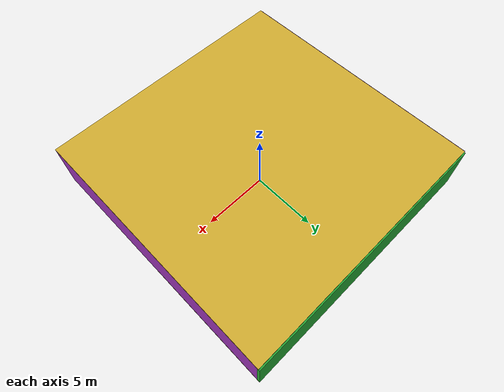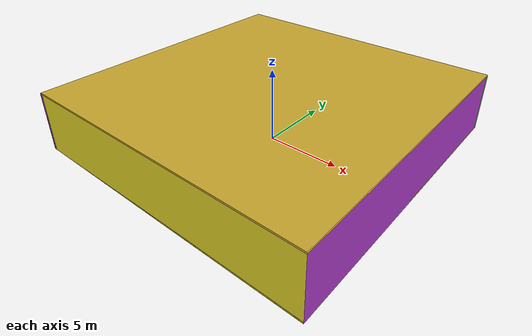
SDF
<sdf version="1.4">
 <world name="default">
  <physics type="ode">
   <max_step_size>0.001</max_step_size>
   <real_time_factor>1</real_time_factor>
   <real_time_update_rate>1000</real_time_update_rate>
   <gravity>0 0 -9.8</gravity>
  </physics>
  <scene><ambient>0.4 0.4 0.4 1</ambient><background>0.7 0.7 0.7 1</background><shadows>1</shadows></scene>
  <model name="Surrounding">
   <static>1</static>
   <link name="Ceiling">
    <collision name="Ceiling_Collision"><geometry><box><size>20 20 0.1</size></box></geometry></collision>
    <visual name="Ceiling_Visual">
     <geometry><box><size>20 20 0.1</size></box></geometry>
     <material>
      <script><uri>file://media/materials/scripts/gazebo.material</uri><name>Gazebo/Gold</name></script>
     </material>
    </visual>
    <pose>0 0 4.05 0 0 0</pose>
   </link>
   <link name="Wall_South">
    <collision name="Wall_South_Collision">
     <geometry><box><size>20 0 4</size></box></geometry>
     <pose>0 0 2 0 -0 0</pose>
    </collision>
    <visual name="Wall_South_Visual">
     <pose>0 0 2 0 -0 0</pose>
     <geometry><box><size>20 0 4</size></box></geometry>
     <material>
      <script><uri>file://media/materials/scripts/gazebo.material</uri><name>Gazebo/YellowGlow</name></script>
     </material>
    </visual>
    <velocity_decay><linear>0</linear><angular>0</angular></velocity_decay>
    <pose>0 -10 0 0 -0 0</pose>
   </link>
   <link name="Wall_East">
    <collision name="Wall_21_Collision">
     <geometry><box><size>20 0 4</size></box></geometry>
     <pose>0 0 2 0 -0 0</pose>
    </collision>
    <visual name="Wall_21_Visual">
     <pose>0 0 2 0 -0 0</pose>
     <geometry><box><size>20 0 4</size></box></geometry>
     <material>
      <script><uri>file://media/materials/scripts/gazebo.material</uri><name>Gazebo/Purple</name></script>
     </material>
    </visual>
    <velocity_decay><linear>0</linear><angular>0</angular></velocity_decay>
    <pose>10 0 0 0 -0 1.5708</pose>
   </link>
   <link name="Wall_North">
    <collision name="Wall_22_Collision">
     <geometry><box><size>20 0.2 4</size></box></geometry>
     <pose>0 0 2 0 -0 0</pose>
    </collision>
    <visual name="Wall_22_Visual">
     <pose>0 0 2 0 -0 0</pose>
     <geometry><box><size>20 0.2 4</size></box></geometry>
     <material>
      <script><uri>file://media/materials/scripts/gazebo.material</uri><name>Gazebo/Green</name></script>
     </material>
    </visual>
    <velocity_decay><linear>0</linear><angular>0</angular></velocity_decay>
    <pose>0 10 0 0 -0 0</pose>
   </link>
   <link name="Wall_West">
    <collision name="Wall_23_Collision">
     <geometry><box><size>20 0.2 4</size></box></geometry>
     <pose>0 0 2 0 -0 0</pose>
    </collision>
    <visual name="Wall_23_Visual">
     <pose>0 0 2 0 -0 0</pose>
     <geometry><box><size>20 0.2 4</size></box></geometry>
     <material>
      <script><uri>file://media/materials/scripts/gazebo.material</uri><name>Gazebo/Purple</name></script>
     </material>
    </visual>
    <velocity_decay><linear>0</linear><angular>0</angular></velocity_decay>
    <pose>-10 0 0 0 0 -1.5708</pose>
   </link>
   <link name="Ground_link">
    <collision name="collision">
     <pose>0 0 .05 0 -0 0</pose>
     <geometry><box><size>20 20 0.1</size></box></geometry>
    </collision>
    <visual name="visual">
     <pose>0 0 .05 0 -0 0</pose>
     <geometry><box><size>20 20 0.1</size></box></geometry>
     <material>
      <script>
       <uri>file://media/materials/scripts/gazebo.material</uri>
       <name>Gazebo/YellowTransparent</name>
      </script>
     </material>
    </visual>
   </link>
   <static>1</static>
  </model>
  <spherical_coordinates>
   <surface_model>EARTH_WGS84</surface_model>
   <latitude_deg>0</latitude_deg>
   <longitude_deg>0</longitude_deg>
   <elevation>0</elevation>
   <heading_deg>0</heading_deg>
  </spherical_coordinates>
  <light name="lightball_0" type="diffuse">
   <diffuse>0.8 0.8 0.8 1</diffuse>
   <specular>0.2 0.2 0.2 1</specular>
   <attenuation>
    <range>100</range>
    <constant>0.7</constant>
    <linear>0.01</linear>
    <quadratic>0.001</quadratic>
   </attenuation>
   <direction>-0.5 0.1 -0.9</direction>
   <pose>-1.64313968823 3.4773546998 2.75075926267 0 0 0</pose>
  </light>
  <light name="lightball_1" type="diffuse">
   <diffuse>0.8 0.8 0.8 1</diffuse>
   <specular>0.2 0.2 0.2 1</specular>
   <attenuation>
    <range>100</range>
    <constant>0.7</constant>
    <linear>0.01</linear>
    <quadratic>0.001</quadratic>
   </attenuation>
   <direction>-0.5 0.1 -0.9</direction>
   <pose>-7.13600075182 3.63973621198 2.40140127063 0 0 0</pose>
  </light>
  <light name="lightball_2" type="diffuse">
   <diffuse>0.8 0.8 0.8 1</diffuse>
   <specular>0.2 0.2 0.2 1</specular>
   <attenuation>
    <range>100</range>
    <constant>0.7</constant>
    <linear>0.01</linear>
    <quadratic>0.001</quadratic>
   </attenuation>
   <direction>-0.5 0.1 -0.9</direction>
   <pose>9.4819048828 6.38321395597 2.96157165022 0 0 0</pose>
  </light>
  <light name="lightball_3" type="diffuse">
   <diffuse>0.8 0.8 0.8 1</diffuse>
   <specular>0.2 0.2 0.2 1</specular>
   <attenuation>
    <range>100</range>
    <constant>0.7</constant>
    <linear>0.01</linear>
    <quadratic>0.001</quadratic>
   </attenuation>
   <direction>-0.5 0.1 -0.9</direction>
   <pose>-5.8907004568 1.32260066838 1.27126172027 0 0 0</pose>
  </light>
  <light name="lightball_4" type="diffuse">
   <diffuse>0.8 0.8 0.8 1</diffuse>
   <specular>0.2 0.2 0.2 1</specular>
   <attenuation>
    <range>100</range>
    <constant>0.7</constant>
    <linear>0.01</linear>
    <quadratic>0.001</quadratic>
   </attenuation>
   <direction>-0.5 0.1 -0.9</direction>
   <pose>-0.650014062068 -6.2035077475 1.85905057661 0 0 0</pose>
  </light>
  <light name="lightball_5" type="diffuse">
   <diffuse>0.8 0.8 0.8 1</diffuse>
   <specular>0.2 0.2 0.2 1</specular>
   <attenuation>
    <range>100</range>
    <constant>0.7</constant>
    <linear>0.01</linear>
    <quadratic>0.001</quadratic>
   </attenuation>
   <direction>-0.5 0.1 -0.9</direction>
   <pose>6.49448011681 8.84498920213 1.7858946741 0 0 0</pose>
  </light>
  <light name="lightball_6" type="diffuse">
   <diffuse>0.8 0.8 0.8 1</diffuse>
   <specular>0.2 0.2 0.2 1</specular>
   <attenuation>
    <range>100</range>
    <constant>0.7</constant>
    <linear>0.01</linear>
    <quadratic>0.001</quadratic>
   </attenuation>
   <direction>-0.5 0.1 -0.9</direction>
   <pose>-5.08956344895 -4.5210269118 0.934124261451 0 0 0</pose>
  </light>
  <light name="lightball_7" type="diffuse">
   <diffuse>0.8 0.8 0.8 1</diffuse>
   <specular>0.2 0.2 0.2 1</specular>
   <attenuation>
    <range>100</range>
    <constant>0.7</constant>
    <linear>0.01</linear>
    <quadratic>0.001</quadratic>
   </attenuation>
   <direction>-0.5 0.1 -0.9</direction>
   <pose>-4.0140956704 3.68193935639 0.673949181123 0 0 0</pose>
  </light>
  <light name="lightball_8" type="diffuse">
   <diffuse>0.8 0.8 0.8 1</diffuse>
   <specular>0.2 0.2 0.2 1</specular>
   <attenuation>
    <range>100</range>
    <constant>0.7</constant>
    <linear>0.01</linear>
    <quadratic>0.001</quadratic>
   </attenuation>
   <direction>-0.5 0.1 -0.9</direction>
   <pose>-9.46022500518 4.18965102151 2.55952908521 0 0 0</pose>
  </light>
  <light name="lightball_9" type="diffuse">
   <diffuse>0.8 0.8 0.8 1</diffuse>
   <specular>0.2 0.2 0.2 1</specular>
   <attenuation>
    <range>100</range>
    <constant>0.7</constant>
    <linear>0.01</linear>
    <quadratic>0.001</quadratic>
   </attenuation>
   <direction>-0.5 0.1 -0.9</direction>
   <pose>0.159829702508 4.93103447773 0.630317709252 0 0 0</pose>
  </light>
  <light name="lightball_10" type="diffuse">
   <diffuse>0.8 0.8 0.8 1</diffuse>
   <specular>0.2 0.2 0.2 1</specular>
   <attenuation>
    <range>100</range>
    <constant>0.7</constant>
    <linear>0.01</linear>
    <quadratic>0.001</quadratic>
   </attenuation>
   <direction>-0.5 0.1 -0.9</direction>
   <pose>3.10975597721 -9.92862205074 2.68968801723 0 0 0</pose>
  </light>
  <light name="lightball_11" type="diffuse">
   <diffuse>0.8 0.8 0.8 1</diffuse>
   <specular>0.2 0.2 0.2 1</specular>
   <attenuation>
    <range>100</range>
    <constant>0.7</constant>
    <linear>0.01</linear>
    <quadratic>0.001</quadratic>
   </attenuation>
   <direction>-0.5 0.1 -0.9</direction>
   <pose>3.62760046361 2.34066396372 1.00478159522 0 0 0</pose>
  </light>
  <light name="lightball_12" type="diffuse">
   <diffuse>0.8 0.8 0.8 1</diffuse>
   <specular>0.2 0.2 0.2 1</specular>
   <attenuation>
    <range>100</range>
    <constant>0.7</constant>
    <linear>0.01</linear>
    <quadratic>0.001</quadratic>
   </attenuation>
   <direction>-0.5 0.1 -0.9</direction>
   <pose>0.472530894142 9.93118637214 3.27576747695 0 0 0</pose>
  </light>
  <include>
   <uri>model://robocup_3Dsim_goal</uri>
   <pose>-7.71570192474 -8.46636195137 0 0 0 0.590349700205</pose>
  </include>
  <include><uri>model://cabinet</uri><pose>-4.93675931869 -7.53130894382 0 0 0 0.455558828428</pose></include>
  <include><uri>model://table</uri><pose>-2.44208899178 -6.35214928427 0 0 0 1.16982268016</pose></include>
  <include><uri>model://cabinet</uri><pose>0.369511298988 -1.27272411094 0 0 0 1.2262266661</pose></include>
  <include><uri>model://table</uri><pose>8.59696054278 1.21600220559 0 0 0 1.88315403318</pose></include>
 </world>
</sdf>

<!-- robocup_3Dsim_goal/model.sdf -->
<sdf version="1.5">
  <model name="robocup_3d_goal">
    <static>true</static>
    <link name="left_post">
      <pose>0 1.05 0.45 0 0 0</pose>
      <collision name="collision">
        <geometry>
          <cylinder>
            <radius>0.05</radius>
            <length>0.9</length>
          </cylinder>
        </geometry>
      </collision>
      <visual name="visual">
        <geometry>
          <cylinder>
            <radius>0.05</radius>
            <length>0.9</length>
          </cylinder>
        </geometry>
        <material>
          <script>
            <uri>file://media/materials/scripts/gazebo.material</uri>
            <name>Gazebo/ZincYellow</name>
          </script>
        </material>
      </visual>
    </link>
    <link name="left_support_horiz_lower">
      <pose>0.30 1.05 0.01 0 0 0</pose>
      <collision name="collision">
        <geometry>
          <box>
            <size>0.50 0.02 0.02</size>
          </box>
        </geometry>
      </collision>
      <visual name="visual">
        <geometry>
          <box>
            <size>0.50 0.02 0.02</size>
          </box>
        </geometry>
        <material>
          <script>
            <uri>file://media/materials/scripts/gazebo.material</uri>
            <name>Gazebo/White</name>
          </script>
        </material>
      </visual>
    </link>
    <link name="left_support_horiz_upper">
      <pose>0.30 1.05 0.79 0 0 0</pose>
      <collision name="collision">
        <geometry>
          <box>
            <size>0.50 0.02 0.02</size>
          </box>
        </geometry>
      </collision>
      <visual name="visual">
        <geometry>
          <box>
            <size>0.50 0.02 0.02</size>
          </box>
        </geometry>
        <material>
          <script>
            <uri>file://media/materials/scripts/gazebo.material</uri>
            <name>Gazebo/White</name>
          </script>
        </material>
      </visual>
    </link>
    <link name="left_support_vertical">
      <pose>0.56 1.05 0.4 0 1.5708 0</pose>
      <collision name="collision">
        <geometry>
          <box>
            <size>0.80 0.02 0.02</size>
          </box>
        </geometry>
      </collision>
      <visual name="visual">
        <geometry>
          <box>
            <size>0.80 0.02 0.02</size>
          </box>
        </geometry>
        <material>
          <script>
            <uri>file://media/materials/scripts/gazebo.material</uri>
            <name>Gazebo/White</name>
          </script>
        </material>
      </visual>
    </link>
    <link name="right_support_horiz_lower">
      <pose>0.30 -1.05 0.01 0 0 0</pose>
      <collision name="collision">
        <geometry>
          <box>
            <size>0.50 0.02 0.02</size>
          </box>
        </geometry>
      </collision>
      <visual name="visual">
        <geometry>
          <box>
            <size>0.50 0.02 0.02</size>
          </box>
        </geometry>
        <material>
          <script>
            <uri>file://media/materials/scripts/gazebo.material</uri>
            <name>Gazebo/White</name>
          </script>
        </material>
      </visual>
    </link>
    <link name="right_support_horiz_upper">
      <pose>0.30 -1.05 0.79 0 0 0</pose>
      <collision name="collision">
        <geometry>
          <box>
            <size>0.50 0.02 0.02</size>
          </box>
        </geometry>
      </collision>
      <visual name="visual">
        <geometry>
          <box>
            <size>0.50 0.02 0.02</size>
          </box>
        </geometry>
        <material>
          <script>
            <uri>file://media/materials/scripts/gazebo.material</uri>
            <name>Gazebo/White</name>
          </script>
        </material>
      </visual>
    </link>
    <link name="right_support_vertical">
      <pose>0.56 -1.05 0.4 0 1.5708 0</pose>
      <collision name="collision">
        <geometry>
          <box>
            <size>0.80 0.02 0.02</size>
          </box>
        </geometry>
      </collision>
      <visual name="visual">
        <geometry>
          <box>
            <size>0.80 0.02 0.02</size>
          </box>
        </geometry>
        <material>
          <script>
            <uri>file://media/materials/scripts/gazebo.material</uri>
            <name>Gazebo/White</name>
          </script>
        </material>
      </visual>
    </link>
    <link name="center_support_horiz_lower">
      <pose>0.56 0 0.01 0 1.5708 0</pose>
      <collision name="collision">
        <geometry>
          <box>
            <size>0.02 2.08 0.02</size>
          </box>
        </geometry>
      </collision>
      <visual name="visual">
        <geometry>
          <box>
            <size>0.02 2.08 0.02</size>
          </box>
        </geometry>
        <material>
          <script>
            <uri>file://media/materials/scripts/gazebo.material</uri>
            <name>Gazebo/White</name>
          </script>
        </material>
      </visual>
    </link>
    <link name="center_support_horiz_upper">
      <pose>0.56 0 0.79 0 1.5708 0</pose>
      <collision name="collision">
        <geometry>
          <box>
            <size>0.02 2.08 0.02</size>
          </box>
        </geometry>
      </collision>
      <visual name="visual">
        <geometry>
          <box>
            <size>0.02 2.08 0.02</size>
          </box>
        </geometry>
        <material>
          <script>
            <uri>file://media/materials/scripts/gazebo.material</uri>
            <name>Gazebo/White</name>
          </script>
        </material>
      </visual>
    </link>
    <link name="right_post">
      <pose>0 -1.05 0.45 0 0 0</pose>
      <collision name="collision">
        <geometry>
          <cylinder>
            <radius>0.05</radius>
            <length>0.9</length>
          </cylinder>
        </geometry>
      </collision>
      <visual name="visual">
        <geometry>
          <cylinder>
            <radius>0.05</radius>
            <length>0.9</length>
          </cylinder>
        </geometry>
        <material>
          <script>
            <uri>file://media/materials/scripts/gazebo.material</uri>
            <name>Gazebo/ZincYellow</name>
          </script>
        </material>
      </visual>
    </link>
    <link name="crossbar">
      <pose>0 0 0.85 1.57 1.57 0</pose>
      <collision name="collision">
        <geometry>
          <cylinder>
            <radius>0.05</radius>
            <length>2.0</length>
          </cylinder>
        </geometry>
      </collision>
      <visual name="visual">
        <geometry>
          <cylinder>
            <radius>0.05</radius>
            <length>2.0</length>
          </cylinder>
        </geometry>
        <material>
          <script>
            <uri>file://media/materials/scripts/gazebo.material</uri>
            <name>Gazebo/ZincYellow</name>
          </script>
        </material>
      </visual>
    </link>
    <link name="center_net">
      <pose>0.56 0 0.40 0 0 0</pose>
      <collision name="collision">
        <geometry>
          <box>
            <size>0.01 2.1 0.80</size>
          </box>
        </geometry>
      </collision>
      <visual name="visual">
        <geometry>
          <box>
            <size>0.01 2.1 0.80</size>
          </box>
        </geometry>
        <material>
          <script>
            <uri>model://../model_source/models/robocup09_spl_field/materials/scripts/</uri>
            <uri>model://../model_source/models/robocup09_spl_field/materials/textures/</uri>
            <name>RoboCup/Net</name>
          </script>
        </material>
      </visual>
    </link>
    <link name="left_net">
      <pose>0.30 1.05 0.40 0 0 0</pose>
      <collision name="collision">
        <geometry>
          <box>
            <size>0.50 0.01 0.76</size>
          </box>
        </geometry>
      </collision>
      <visual name="visual">
        <geometry>
          <box>
            <size>0.50 0.01 0.76</size>
          </box>
        </geometry>
        <material>
          <script>
            <uri>model://../model_source/models/robocup09_spl_field/materials/scripts/</uri>
            <uri>model://../model_source/models/robocup09_spl_field/materials/textures/</uri>
            <name>RoboCup/Net</name>
          </script>
        </material>
      </visual>
    </link>
    <link name="right_net">
      <pose>0.30 -1.05 0.40 0 0 0</pose>
      <collision name="collision">
        <geometry>
          <box>
            <size>0.50 0.01 0.76</size>
          </box>
        </geometry>
      </collision>
      <visual name="visual">
        <geometry>
          <box>
            <size>0.50 0.01 0.76</size>
          </box>
        </geometry>
        <material>
          <script>
            <uri>model://../model_source/models/robocup09_spl_field/materials/scripts/</uri>
            <uri>model://../model_source/models/robocup09_spl_field/materials/textures/</uri>
            <name>RoboCup/Net</name>
          </script>
        </material>
      </visual>
    </link>
  </model>
</sdf>

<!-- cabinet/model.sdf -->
<sdf version="1.5">
  <model name="cabinet">
    <static>true</static>
    <link name="cabinet_bottom_plate">
      <inertial>
        <pose>0 0 -1 0 0 0</pose>
        <inertia>
          <ixx>2.050000</ixx>
          <ixy>0</ixy>
          <ixz>0</ixz>
          <iyy>2.050000</iyy>
          <iyz>0</iyz>
          <izz>2.050000</izz>
        </inertia>
        <mass>25.000000</mass>
      </inertial>
      <collision name="cabinet_bottom_plate_geom">
        <pose>0 0 0.010000 0 0 0</pose>
        <geometry>
          <box>
            <size>0.450000 0.450000 0.020000</size>
          </box>
        </geometry>
      </collision>
      <visual name="cabinet_bottom_plate_geom_visual">
        <pose>0 0 0.010000 0 0 0</pose>
        <geometry>
          <box>
            <size>0.450000 0.450000 0.020000</size>
          </box>
        </geometry>
        <material>
          <script>
            <uri>model://media/materials/scripts/gazebo.material</uri>
            <name>Gazebo/Wood</name>
          </script>
        </material>
      </visual>
      <collision name="cabinet_bottom_plate_geom_cabinet_back_plate">
        <pose>0.235000 0 0.510000 0 0 0</pose>
        <geometry>
          <box>
            <size>0.020000 0.450000 1.020000</size>
          </box>
        </geometry>
      </collision>
      <visual name="cabinet_bottom_plate_geom_cabinet_back_plate_visual">
        <pose>0.235000 0 0.510000 0 0 0</pose>
        <geometry>
          <box>
            <size>0.020000 0.450000 1.020000</size>
          </box>
        </geometry>
        <material>
          <script>
            <uri>model://media/materials/scripts/gazebo.material</uri>
            <name>Gazebo/Wood</name>
          </script>
        </material>
      </visual>
      <collision name="cabinet_bottom_plate_geom_cabinet_left_plate">
        <pose>0 0.235000 0.510000 0 0 0</pose>
        <geometry>
          <box>
            <size>0.450000 0.020000 1.020000</size>
          </box>
        </geometry>
      </collision>
      <visual name="cabinet_bottom_plate_geom_cabinet_left_plate_visual">
        <pose>0 0.235000 0.510000 0 0 0</pose>
        <geometry>
          <box>
            <size>0.450000 0.020000 1.020000</size>
          </box>
        </geometry>
        <material>
          <script>
            <uri>model://media/materials/scripts/gazebo.material</uri>
            <name>Gazebo/Wood</name>
          </script>
        </material>
      </visual>
      <collision name="cabinet_bottom_plate_geom_cabinet_middle_plate">
        <pose>0 0 0.510000 0 0 0</pose>
        <geometry>
          <box>
            <size>0.450000 0.450000 0.020000</size>
          </box>
        </geometry>
      </collision>
      <visual name="cabinet_bottom_plate_geom_cabinet_middle_plate_visual">
        <pose>0 0 0.510000 0 0 0</pose>
        <geometry>
          <box>
            <size>0.450000 0.450000 0.020000</size>
          </box>
        </geometry>
        <material>
          <script>
            <uri>model://media/materials/scripts/gazebo.material</uri>
            <name>Gazebo/Wood</name>
          </script>
        </material>
      </visual>
      <collision name="cabinet_bottom_plate_geom_cabinet_right_plate">
        <pose>0 -0.235000 0.510000 0 0 0</pose>
        <geometry>
          <box>
            <size>0.450000 0.020000 1.020000</size>
          </box>
        </geometry>
      </collision>
      <visual name="cabinet_bottom_plate_geom_cabinet_right_plate_visual">
        <pose>0 -0.235000 0.510000 0 0 0</pose>
        <geometry>
          <box>
            <size>0.450000 0.020000 1.020000</size>
          </box>
        </geometry>
        <material>
          <script>
            <uri>model://media/materials/scripts/gazebo.material</uri>
            <name>Gazebo/Wood</name>
          </script>
        </material>
      </visual>
      <collision name="cabinet_bottom_plate_geom_cabinet_top_plate">
        <pose>0 0 1.010000 0 0 0</pose>
        <geometry>
          <box>
            <size>0.450000 0.450000 0.020000</size>
          </box>
        </geometry>
      </collision>
      <visual name="cabinet_bottom_plate_geom_cabinet_top_plate_visual">
        <pose>0 0 1.010000 0 0 0</pose>
        <geometry>
          <box>
            <size>0.450000 0.450000 0.020000</size>
          </box>
        </geometry>
        <material>
          <script>
            <uri>model://media/materials/scripts/gazebo.material</uri>
            <name>Gazebo/Wood</name>
          </script>
        </material>
      </visual>
    </link>
  </model>
</sdf>

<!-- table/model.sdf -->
<sdf version="1.5">
  <model name="table">
    <static>true</static>
    <link name="link">
      <collision name="surface">
        <pose>0 0 1.0 0 0 0</pose>
        <geometry>
          <box>
            <size>1.5 0.8 0.03</size>
          </box>
        </geometry>
        <surface>
          <friction>
            <ode>
              <mu>0.6</mu>
              <mu2>0.6</mu2>
            </ode>
          </friction>
        </surface>
      </collision>
      <visual name="visual1">
        <pose>0 0 1.0 0 0 0</pose>
        <geometry>
          <box>
            <size>1.5 0.8 0.03</size>
          </box>
        </geometry>
        <material>
          <script>
            <uri>model://media/materials/scripts/gazebo.material</uri>
            <name>Gazebo/Wood</name>
          </script>
        </material>
      </visual>
      <collision name="front_left_leg">
        <pose>0.68 0.38 0.5 0 0 0</pose>
        <geometry>
          <cylinder>
            <radius>0.02</radius>
            <length>1.0</length>
          </cylinder>
        </geometry>
      </collision>
      <visual name="front_left_leg">
        <pose>0.68 0.38 0.5 0 0 0</pose>
        <geometry>
          <cylinder>
            <radius>0.02</radius>
            <length>1.0</length>
          </cylinder>
        </geometry>
        <material>
          <script>
            <uri>model://media/materials/scripts/gazebo.material</uri>
            <name>Gazebo/Grey</name>
          </script>
        </material>
      </visual>
      <collision name="front_right_leg">
        <pose>0.68 -0.38 0.5 0 0 0</pose>
        <geometry>
          <cylinder>
            <radius>0.02</radius>
            <length>1.0</length>
          </cylinder>
        </geometry>
      </collision>
      <visual name="front_right_leg">
        <pose>0.68 -0.38 0.5 0 0 0</pose>
        <geometry>
          <cylinder>
            <radius>0.02</radius>
            <length>1.0</length>
          </cylinder>
        </geometry>
        <material>
          <script>
            <uri>model://media/materials/scripts/gazebo.material</uri>
            <name>Gazebo/Grey</name>
          </script>
        </material>
      </visual>
      <collision name="back_right_leg">
        <pose>-0.68 -0.38 0.5 0 0 0</pose>
        <geometry>
          <cylinder>
            <radius>0.02</radius>
            <length>1.0</length>
          </cylinder>
        </geometry>
      </collision>
      <visual name="back_right_leg">
        <pose>-0.68 -0.38 0.5 0 0 0</pose>
        <geometry>
          <cylinder>
            <radius>0.02</radius>
            <length>1.0</length>
          </cylinder>
        </geometry>
        <material>
          <script>
            <uri>model://media/materials/scripts/gazebo.material</uri>
            <name>Gazebo/Grey</name>
          </script>
        </material>
      </visual>
      <collision name="back_left_leg">
        <pose>-0.68 0.38 0.5 0 0 0</pose>
        <geometry>
          <cylinder>
            <radius>0.02</radius>
            <length>1.0</length>
          </cylinder>
        </geometry>
      </collision>
      <visual name="back_left_leg">
        <pose>-0.68 0.38 0.5 0 0 0</pose>
        <geometry>
          <cylinder>
            <radius>0.02</radius>
            <length>1.0</length>
          </cylinder>
        </geometry>
        <material>
          <script>
            <uri>model://media/materials/scripts/gazebo.material</uri>
            <name>Gazebo/Grey</name>
          </script>
        </material>
      </visual>
    </link>
  </model>
</sdf>
